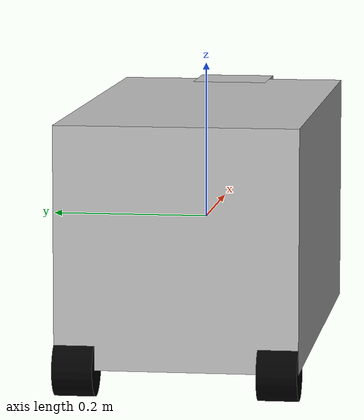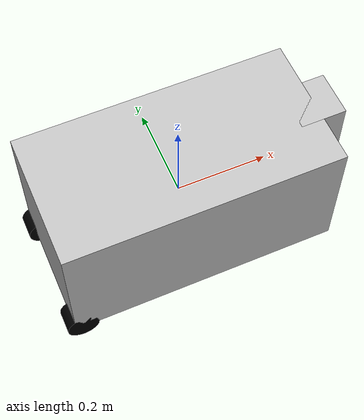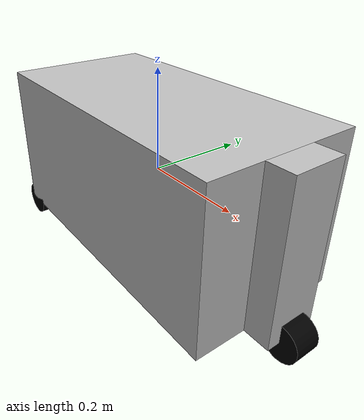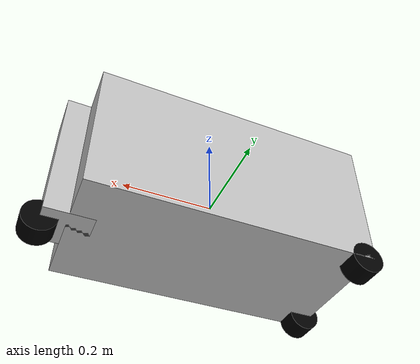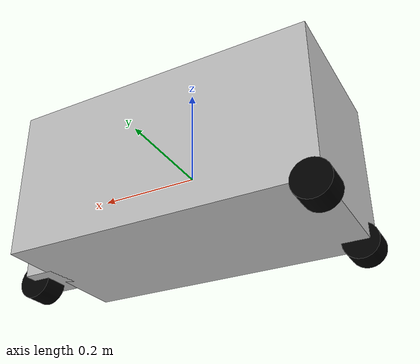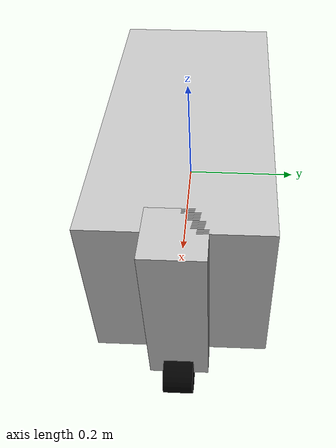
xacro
<?xml version="1.0"?>
<robot xmlns:xacro="http://www.ros.org/wiki/xacro" name="tortoisebot">

    <!-- This will be the main body of the tortoise bot -->
    <link name="base_link">
        <visual>
            <geometry>
                <box size="0.6 0.3 0.3" />
            </geometry>
            <material name="silver">
                <color rgba="0.75 0.75 0.75 1" />
            </material>
        </visual>
        <collision>
            <geometry>
                <box size="0.6 0.3 0.3" />
            </geometry>
        </collision>
        <inertial>
            <mass value="1.0" />
            <inertia ixx="0.015" iyy="0.0375" izz="0.0375" ixy="0" ixz="0" iyz="0" />
        </inertial>
    </link>
    <!-- Define front caster -->
    <link name="front_caster">
        <visual>
            <geometry>
                <box size="0.1 0.1 0.3" />
            </geometry>
            <material name="silver" />
        </visual>
        <collision>
            <geometry>
                <box size="0.1 0.1 0.3" />
            </geometry>
        </collision>
        <inertial>
            <mass value="0.1" />
            <inertia ixx="0.00083" iyy="0.00083" izz="0.000167" ixy="0" ixz="0" iyz="0" />
        </inertial>
    </link>
    <!-- Define joint between front caster and main body -->
    <joint name="front_caster_joint" type="continuous">
        <axis xyz="0 0 1" />
        <parent link="base_link" />
        <child link="front_caster" />
        <origin rpy="0 0 0" xyz="0.3 0 0" />
    </joint>

    <!-- Add front wheel and joint -->
    <link name="front_wheel">
        <visual>
            <geometry>
                <cylinder length="0.05" radius="0.035" />
            </geometry>
            <material name="black" />
        </visual>
        <collision>
            <geometry>
                <cylinder length="0.05" radius="0.035" />
            </geometry>
        </collision>
        <inertial>
            <mass value="0.1" />
            <inertia ixx="5.1458e-5" iyy="5.1458e-5" izz="6.125e-5" ixy="0" ixz="0" iyz="0" />
        </inertial>
    </link>
    <joint name="front_wheel_joint" type="continuous">
        <axis xyz="0 0 1" />
        <parent link="front_caster" />
        <child link="front_wheel" />
        <!-- rotate by -90 deg around the x axis -->
        <origin rpy="-1.5708 0 0" xyz="0.05 0 -.15" />
    </joint>

    <!-- Add rear wheels -->
    <link name="right_wheel">
        <visual>
            <geometry>
                <cylinder length="0.05" radius="0.035" />
            </geometry>
            <material name="black">
                <color rgba="0 0 0 1" />
            </material>
        </visual>
        <collision>
            <geometry>
                <cylinder length="0.05" radius="0.035" />
            </geometry>
        </collision>
        <inertial>
            <mass value="0.1" />
            <inertia ixx="5.1458e-5" iyy="5.1458e-5" izz="6.125e-5" ixy="0" ixz="0" iyz="0" />
        </inertial>
    </link>
    <joint name="right_wheel_joint" type="continuous">
        <axis xyz="0 0 1" />
        <parent link="base_link" />
        <child link="right_wheel" />
        <origin rpy="-1.5708 0 0" xyz="-0.2825 -0.125 -.15" />
    </joint>

    <link name="left_wheel">
        <visual>
            <geometry>
                <cylinder length="0.05" radius="0.035" />
            </geometry>
            <material name="black" />
        </visual>
        <collision>
            <geometry>
                <cylinder length="0.05" radius="0.035" />
            </geometry>
        </collision>
        <inertial>
            <mass value="0.1" />
            <inertia ixx="5.1458e-5" iyy="5.1458e-5" izz="6.125e-5" ixy="0" ixz="0" iyz="0" />
        </inertial>
    </link>
    <joint name="left_wheel_joint" type="continuous">
        <axis xyz="0 0 1" />
        <parent link="base_link" />
        <child link="left_wheel" />
        <origin rpy="-1.5708 0 0" xyz="-0.2825 0.125 -.15" />
    </joint>

    <!-- Mount Ouster OS1-64 LiDAR -->

    <!-- Load differential drive plugin -->
    <gazebo>
        <plugin name="differential_drive_controller" filename="libgazebo_ros_diff_drive.so">
            <leftJoint>left_wheel_joint</leftJoint>
            <rightJoint>right_wheel_joint</rightJoint>
            <robotBaseFrame>base_link</robotBaseFrame>
            <wheelSeparation>0.25</wheelSeparation>
            <wheelDiameter>0.07</wheelDiameter>
            <publishWheelJointState>true</publishWheelJointState>
        </plugin>
    </gazebo>

    <!-- ################################### GPS ################################## -->
    <joint name="gps_joint" type="fixed">
        <axis xyz="1 0 0"/>
        <origin xyz="0 0 0.02"/>
        <parent link="base_link"/>
        <child link="gps_link"/>
    </joint>

    <link name="gps_link">
        <inertial>
            <mass value="0.001"/>
            <origin rpy="0 0 0" xyz="0 0 0"/>
            <inertia ixx="0.0001" ixy="0" ixz="0" iyy="0.000001" iyz="0" izz="0.0001"/>
        </inertial>
        <visual>
            <origin rpy="0 0 0" xyz="0 0 0"/>
            <geometry>
                <box size="0.1 0.1 0.1"/>
            </geometry>
        </visual>
        <collision>
            <origin rpy="0 0 0" xyz="0 0 0"/>
            <geometry>
                <box size=".1 .1 .1"/>
            </geometry>
        </collision>
    </link>

    <gazebo>
        <plugin name="gps_sensor" filename="libhector_gazebo_ros_gps.so">
            <alwaysOn>1</alwaysOn>
            <updateRate>10.0</updateRate>
            <bodyName>gps_link</bodyName>
            <robotBaseFrame>base_link</robotBaseFrame>
            <topicName>/piksi/gps</topicName>
            <velocityTopicName>/piksi/velocity</velocityTopicName>
            <drift>5.0 5.0 5.0</drift>
            <gaussianNoise>0.1 0.1 0.1</gaussianNoise>
            <velocityDrift>0 0 0</velocityDrift>
            <velocityGaussianNoise>0.1 0.1 0.1</velocityGaussianNoise>
        </plugin>
    </gazebo>

    <!-- ################################### IMU ################################## -->
    <joint name="imu_joint" type="fixed">
        <axis xyz="1 0 0"/>
        <origin xyz="0 0 0.02"/>
        <parent link="base_link"/>
        <child link="imu_link"/>
    </joint>

    <link name="imu_link">
        <inertial>
            <mass value="0.001"/>
            <origin rpy="0 0 0" xyz="0 0 0"/>
            <inertia ixx="0.0001" ixy="0" ixz="0" iyy="0.000001" iyz="0" izz="0.0001"/>
        </inertial>
        <visual>
            <origin rpy="0 0 0" xyz="0 0 0"/>
            <geometry>
                <box size="0.05 0.05 0.05"/>
            </geometry>
        </visual>
        <collision>
            <origin rpy="0 0 0" xyz="0 0 0"/>
            <geometry>
                <box size="0.05 0.05 0.05"/>
            </geometry>
        </collision>
    </link>

    <gazebo>
        <plugin name="imu_controller" filename="libhector_gazebo_ros_imu.so">
            <robotNamespace>/</robotNamespace>
            <updateRate>100.0</updateRate>
            <bodyName>imu_link</bodyName>
            <topicName>/piksi/imu</topicName>
            <accelDrift>0.005 0.005 0.005</accelDrift>
            <accelGaussianNoise>0.005 0.005 0.005</accelGaussianNoise>
            <rateDrift>0.005 0.005 0.005 </rateDrift>
            <rateGaussianNoise>0.005 0.005 0.005 </rateGaussianNoise>
            <headingDrift>0.005</headingDrift>
            <headingGaussianNoise>0.005</headingGaussianNoise>
        </plugin>
    </gazebo>

</robot>
